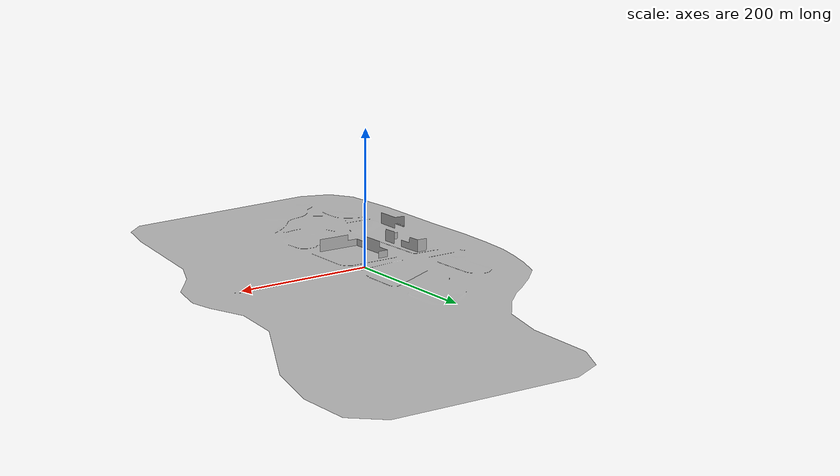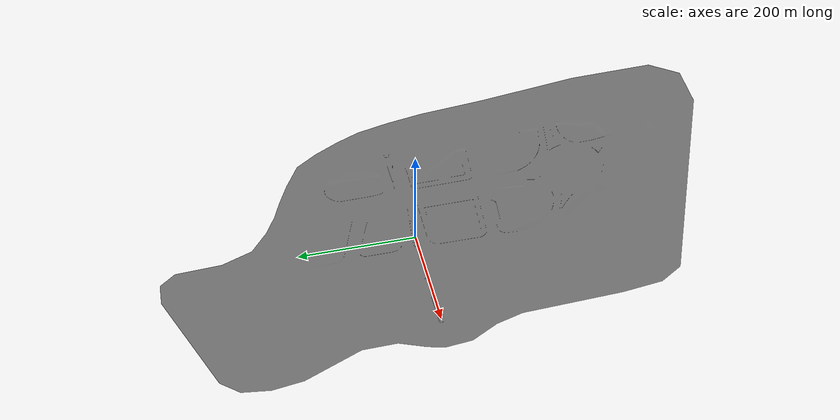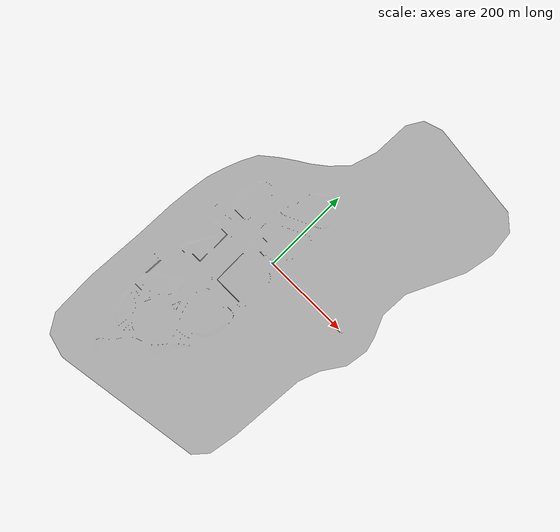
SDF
<?xml version="1.0" ?>
<sdf version="1.6">
  <model name="mycity">
    <static>true</static>
    <link name="link">
      <collision name="collision">
        <geometry>
          <mesh>
            <scale>0.254 0.254 0.254</scale>
            <uri>model://mycity/meshes/mycity.dae</uri>
          </mesh>
        </geometry>
      </collision>

      <visual name="visual">
        <geometry>
          <mesh>
            <scale>0.254 0.254 0.254</scale>
            <uri>model://mycity/meshes/mycity.dae</uri>
          </mesh>
        </geometry>
      </visual>
    </link>
  </model>
</sdf>
